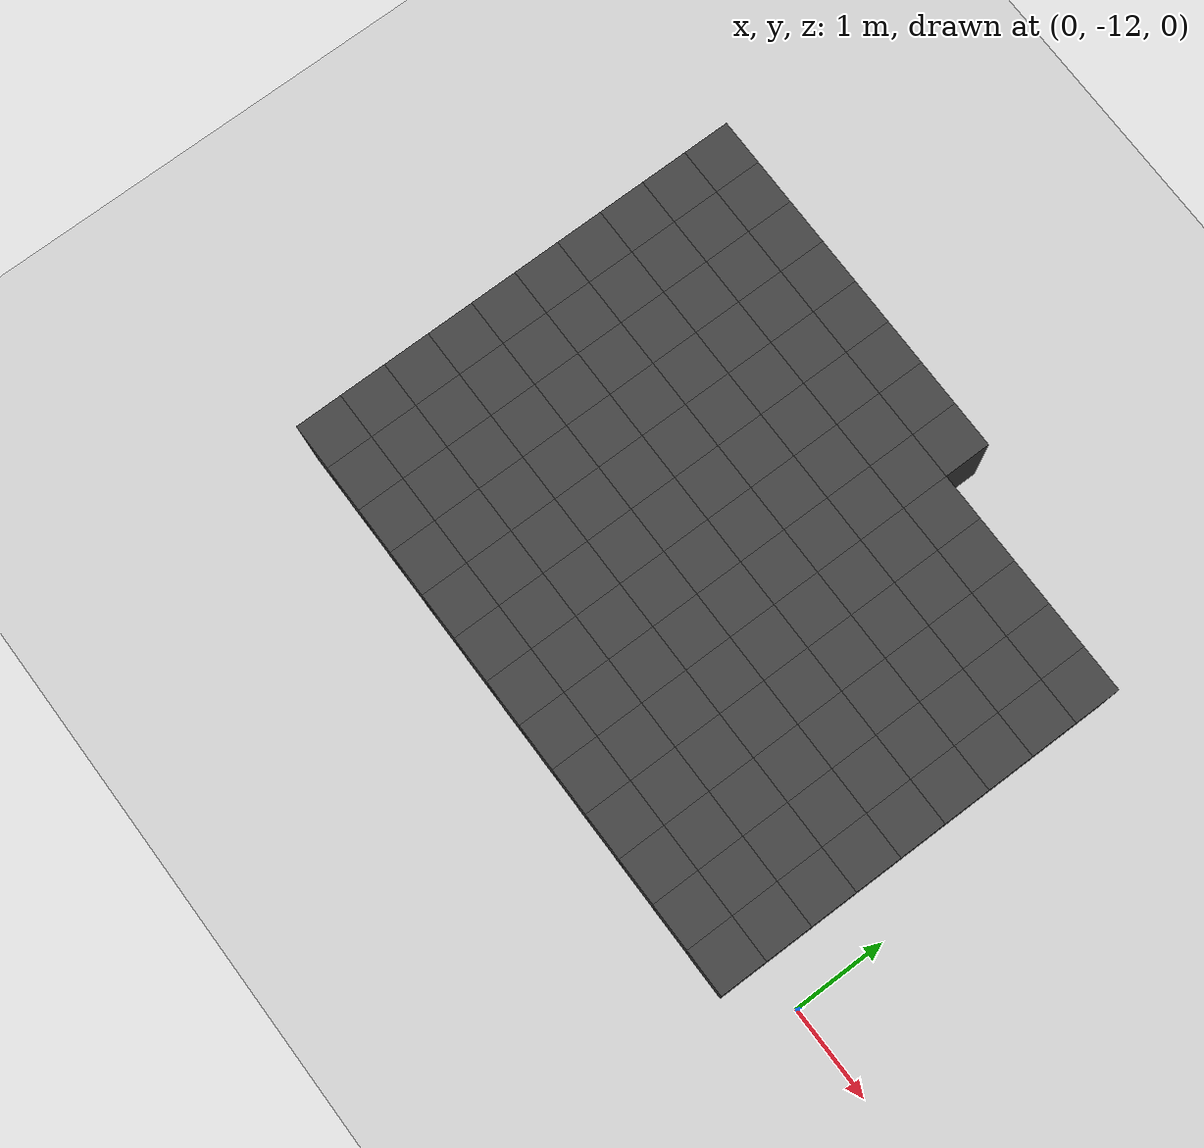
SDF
<sdf version="1.7">
 <world name="map_10764">
  <model name="ground_plane">
   <static>true</static>
   <link name="link">
    <collision name="collision">
     <geometry><plane><normal>0 0 1</normal><size>200 200</size></plane></geometry>
    </collision>
    <visual name="visual">
     <geometry><plane><normal>0 0 1</normal><size>200 200</size></plane></geometry>
     <material><ambient>0.8 0.8 0.8 1</ambient><diffuse>0.8 0.8 0.8 1</diffuse></material>
    </visual>
   </link>
  </model>
  <model name="maze_environment">
   <static>true</static>
   <link name="wall_1659">
    <pose>-6.750 -7.750 0.500 0 0 0</pose>
    <collision name="col"><geometry><box><size>0.5 0.5 1.0</size></box></geometry></collision>
    <visual name="vis">
     <geometry><box><size>0.5 0.5 1.0</size></box></geometry>
     <material><ambient>0.15 0.15 0.15 1</ambient><diffuse>0.25 0.25 0.25 1</diffuse></material>
    </visual>
   </link>
   <link name="wall_1660">
    <pose>-6.250 -7.750 0.500 0 0 0</pose>
    <collision name="col"><geometry><box><size>0.5 0.5 1.0</size></box></geometry></collision>
    <visual name="vis">
     <geometry><box><size>0.5 0.5 1.0</size></box></geometry>
     <material><ambient>0.15 0.15 0.15 1</ambient><diffuse>0.25 0.25 0.25 1</diffuse></material>
    </visual>
   </link>
   <link name="wall_1661">
    <pose>-5.750 -7.750 0.500 0 0 0</pose>
    <collision name="col"><geometry><box><size>0.5 0.5 1.0</size></box></geometry></collision>
    <visual name="vis">
     <geometry><box><size>0.5 0.5 1.0</size></box></geometry>
     <material><ambient>0.15 0.15 0.15 1</ambient><diffuse>0.25 0.25 0.25 1</diffuse></material>
    </visual>
   </link>
   <link name="wall_1662">
    <pose>-5.250 -7.750 0.500 0 0 0</pose>
    <collision name="col"><geometry><box><size>0.5 0.5 1.0</size></box></geometry></collision>
    <visual name="vis">
     <geometry><box><size>0.5 0.5 1.0</size></box></geometry>
     <material><ambient>0.15 0.15 0.15 1</ambient><diffuse>0.25 0.25 0.25 1</diffuse></material>
    </visual>
   </link>
   <link name="wall_1663">
    <pose>-4.750 -7.750 0.500 0 0 0</pose>
    <collision name="col"><geometry><box><size>0.5 0.5 1.0</size></box></geometry></collision>
    <visual name="vis">
     <geometry><box><size>0.5 0.5 1.0</size></box></geometry>
     <material><ambient>0.15 0.15 0.15 1</ambient><diffuse>0.25 0.25 0.25 1</diffuse></material>
    </visual>
   </link>
   <link name="wall_1664">
    <pose>-4.250 -7.750 0.500 0 0 0</pose>
    <collision name="col"><geometry><box><size>0.5 0.5 1.0</size></box></geometry></collision>
    <visual name="vis">
     <geometry><box><size>0.5 0.5 1.0</size></box></geometry>
     <material><ambient>0.15 0.15 0.15 1</ambient><diffuse>0.25 0.25 0.25 1</diffuse></material>
    </visual>
   </link>
   <link name="wall_1665">
    <pose>-3.750 -7.750 0.500 0 0 0</pose>
    <collision name="col"><geometry><box><size>0.5 0.5 1.0</size></box></geometry></collision>
    <visual name="vis">
     <geometry><box><size>0.5 0.5 1.0</size></box></geometry>
     <material><ambient>0.15 0.15 0.15 1</ambient><diffuse>0.25 0.25 0.25 1</diffuse></material>
    </visual>
   </link>
   <link name="wall_1666">
    <pose>-3.250 -7.750 0.500 0 0 0</pose>
    <collision name="col"><geometry><box><size>0.5 0.5 1.0</size></box></geometry></collision>
    <visual name="vis">
     <geometry><box><size>0.5 0.5 1.0</size></box></geometry>
     <material><ambient>0.15 0.15 0.15 1</ambient><diffuse>0.25 0.25 0.25 1</diffuse></material>
    </visual>
   </link>
   <link name="wall_1708">
    <pose>-6.750 -8.250 0.500 0 0 0</pose>
    <collision name="col"><geometry><box><size>0.5 0.5 1.0</size></box></geometry></collision>
    <visual name="vis">
     <geometry><box><size>0.5 0.5 1.0</size></box></geometry>
     <material><ambient>0.15 0.15 0.15 1</ambient><diffuse>0.25 0.25 0.25 1</diffuse></material>
    </visual>
   </link>
   <link name="wall_1709">
    <pose>-6.250 -8.250 0.500 0 0 0</pose>
    <collision name="col"><geometry><box><size>0.5 0.5 1.0</size></box></geometry></collision>
    <visual name="vis">
     <geometry><box><size>0.5 0.5 1.0</size></box></geometry>
     <material><ambient>0.15 0.15 0.15 1</ambient><diffuse>0.25 0.25 0.25 1</diffuse></material>
    </visual>
   </link>
   <link name="wall_1710">
    <pose>-5.750 -8.250 0.500 0 0 0</pose>
    <collision name="col"><geometry><box><size>0.5 0.5 1.0</size></box></geometry></collision>
    <visual name="vis">
     <geometry><box><size>0.5 0.5 1.0</size></box></geometry>
     <material><ambient>0.15 0.15 0.15 1</ambient><diffuse>0.25 0.25 0.25 1</diffuse></material>
    </visual>
   </link>
   <link name="wall_1711">
    <pose>-5.250 -8.250 0.500 0 0 0</pose>
    <collision name="col"><geometry><box><size>0.5 0.5 1.0</size></box></geometry></collision>
    <visual name="vis">
     <geometry><box><size>0.5 0.5 1.0</size></box></geometry>
     <material><ambient>0.15 0.15 0.15 1</ambient><diffuse>0.25 0.25 0.25 1</diffuse></material>
    </visual>
   </link>
   <link name="wall_1712">
    <pose>-4.750 -8.250 0.500 0 0 0</pose>
    <collision name="col"><geometry><box><size>0.5 0.5 1.0</size></box></geometry></collision>
    <visual name="vis">
     <geometry><box><size>0.5 0.5 1.0</size></box></geometry>
     <material><ambient>0.15 0.15 0.15 1</ambient><diffuse>0.25 0.25 0.25 1</diffuse></material>
    </visual>
   </link>
   <link name="wall_1713">
    <pose>-4.250 -8.250 0.500 0 0 0</pose>
    <collision name="col"><geometry><box><size>0.5 0.5 1.0</size></box></geometry></collision>
    <visual name="vis">
     <geometry><box><size>0.5 0.5 1.0</size></box></geometry>
     <material><ambient>0.15 0.15 0.15 1</ambient><diffuse>0.25 0.25 0.25 1</diffuse></material>
    </visual>
   </link>
   <link name="wall_1714">
    <pose>-3.750 -8.250 0.500 0 0 0</pose>
    <collision name="col"><geometry><box><size>0.5 0.5 1.0</size></box></geometry></collision>
    <visual name="vis">
     <geometry><box><size>0.5 0.5 1.0</size></box></geometry>
     <material><ambient>0.15 0.15 0.15 1</ambient><diffuse>0.25 0.25 0.25 1</diffuse></material>
    </visual>
   </link>
   <link name="wall_1715">
    <pose>-3.250 -8.250 0.500 0 0 0</pose>
    <collision name="col"><geometry><box><size>0.5 0.5 1.0</size></box></geometry></collision>
    <visual name="vis">
     <geometry><box><size>0.5 0.5 1.0</size></box></geometry>
     <material><ambient>0.15 0.15 0.15 1</ambient><diffuse>0.25 0.25 0.25 1</diffuse></material>
    </visual>
   </link>
   <link name="wall_1716">
    <pose>-2.750 -8.250 0.500 0 0 0</pose>
    <collision name="col"><geometry><box><size>0.5 0.5 1.0</size></box></geometry></collision>
    <visual name="vis">
     <geometry><box><size>0.5 0.5 1.0</size></box></geometry>
     <material><ambient>0.15 0.15 0.15 1</ambient><diffuse>0.25 0.25 0.25 1</diffuse></material>
    </visual>
   </link>
   <link name="wall_1717">
    <pose>-2.250 -8.250 0.500 0 0 0</pose>
    <collision name="col"><geometry><box><size>0.5 0.5 1.0</size></box></geometry></collision>
    <visual name="vis">
     <geometry><box><size>0.5 0.5 1.0</size></box></geometry>
     <material><ambient>0.15 0.15 0.15 1</ambient><diffuse>0.25 0.25 0.25 1</diffuse></material>
    </visual>
   </link>
   <link name="wall_1718">
    <pose>-1.750 -8.250 0.500 0 0 0</pose>
    <collision name="col"><geometry><box><size>0.5 0.5 1.0</size></box></geometry></collision>
    <visual name="vis">
     <geometry><box><size>0.5 0.5 1.0</size></box></geometry>
     <material><ambient>0.15 0.15 0.15 1</ambient><diffuse>0.25 0.25 0.25 1</diffuse></material>
    </visual>
   </link>
   <link name="wall_1719">
    <pose>-1.250 -8.250 0.500 0 0 0</pose>
    <collision name="col"><geometry><box><size>0.5 0.5 1.0</size></box></geometry></collision>
    <visual name="vis">
     <geometry><box><size>0.5 0.5 1.0</size></box></geometry>
     <material><ambient>0.15 0.15 0.15 1</ambient><diffuse>0.25 0.25 0.25 1</diffuse></material>
    </visual>
   </link>
   <link name="wall_1720">
    <pose>-0.750 -8.250 0.500 0 0 0</pose>
    <collision name="col"><geometry><box><size>0.5 0.5 1.0</size></box></geometry></collision>
    <visual name="vis">
     <geometry><box><size>0.5 0.5 1.0</size></box></geometry>
     <material><ambient>0.15 0.15 0.15 1</ambient><diffuse>0.25 0.25 0.25 1</diffuse></material>
    </visual>
   </link>
   <link name="wall_1757">
    <pose>-6.750 -8.750 0.500 0 0 0</pose>
    <collision name="col"><geometry><box><size>0.5 0.5 1.0</size></box></geometry></collision>
    <visual name="vis">
     <geometry><box><size>0.5 0.5 1.0</size></box></geometry>
     <material><ambient>0.15 0.15 0.15 1</ambient><diffuse>0.25 0.25 0.25 1</diffuse></material>
    </visual>
   </link>
   <link name="wall_1758">
    <pose>-6.250 -8.750 0.500 0 0 0</pose>
    <collision name="col"><geometry><box><size>0.5 0.5 1.0</size></box></geometry></collision>
    <visual name="vis">
     <geometry><box><size>0.5 0.5 1.0</size></box></geometry>
     <material><ambient>0.15 0.15 0.15 1</ambient><diffuse>0.25 0.25 0.25 1</diffuse></material>
    </visual>
   </link>
   <link name="wall_1759">
    <pose>-5.750 -8.750 0.500 0 0 0</pose>
    <collision name="col"><geometry><box><size>0.5 0.5 1.0</size></box></geometry></collision>
    <visual name="vis">
     <geometry><box><size>0.5 0.5 1.0</size></box></geometry>
     <material><ambient>0.15 0.15 0.15 1</ambient><diffuse>0.25 0.25 0.25 1</diffuse></material>
    </visual>
   </link>
   <link name="wall_1760">
    <pose>-5.250 -8.750 0.500 0 0 0</pose>
    <collision name="col"><geometry><box><size>0.5 0.5 1.0</size></box></geometry></collision>
    <visual name="vis">
     <geometry><box><size>0.5 0.5 1.0</size></box></geometry>
     <material><ambient>0.15 0.15 0.15 1</ambient><diffuse>0.25 0.25 0.25 1</diffuse></material>
    </visual>
   </link>
   <link name="wall_1761">
    <pose>-4.750 -8.750 0.500 0 0 0</pose>
    <collision name="col"><geometry><box><size>0.5 0.5 1.0</size></box></geometry></collision>
    <visual name="vis">
     <geometry><box><size>0.5 0.5 1.0</size></box></geometry>
     <material><ambient>0.15 0.15 0.15 1</ambient><diffuse>0.25 0.25 0.25 1</diffuse></material>
    </visual>
   </link>
   <link name="wall_1762">
    <pose>-4.250 -8.750 0.500 0 0 0</pose>
    <collision name="col"><geometry><box><size>0.5 0.5 1.0</size></box></geometry></collision>
    <visual name="vis">
     <geometry><box><size>0.5 0.5 1.0</size></box></geometry>
     <material><ambient>0.15 0.15 0.15 1</ambient><diffuse>0.25 0.25 0.25 1</diffuse></material>
    </visual>
   </link>
   <link name="wall_1763">
    <pose>-3.750 -8.750 0.500 0 0 0</pose>
    <collision name="col"><geometry><box><size>0.5 0.5 1.0</size></box></geometry></collision>
    <visual name="vis">
     <geometry><box><size>0.5 0.5 1.0</size></box></geometry>
     <material><ambient>0.15 0.15 0.15 1</ambient><diffuse>0.25 0.25 0.25 1</diffuse></material>
    </visual>
   </link>
   <link name="wall_1764">
    <pose>-3.250 -8.750 0.500 0 0 0</pose>
    <collision name="col"><geometry><box><size>0.5 0.5 1.0</size></box></geometry></collision>
    <visual name="vis">
     <geometry><box><size>0.5 0.5 1.0</size></box></geometry>
     <material><ambient>0.15 0.15 0.15 1</ambient><diffuse>0.25 0.25 0.25 1</diffuse></material>
    </visual>
   </link>
   <link name="wall_1765">
    <pose>-2.750 -8.750 0.500 0 0 0</pose>
    <collision name="col"><geometry><box><size>0.5 0.5 1.0</size></box></geometry></collision>
    <visual name="vis">
     <geometry><box><size>0.5 0.5 1.0</size></box></geometry>
     <material><ambient>0.15 0.15 0.15 1</ambient><diffuse>0.25 0.25 0.25 1</diffuse></material>
    </visual>
   </link>
   <link name="wall_1766">
    <pose>-2.250 -8.750 0.500 0 0 0</pose>
    <collision name="col"><geometry><box><size>0.5 0.5 1.0</size></box></geometry></collision>
    <visual name="vis">
     <geometry><box><size>0.5 0.5 1.0</size></box></geometry>
     <material><ambient>0.15 0.15 0.15 1</ambient><diffuse>0.25 0.25 0.25 1</diffuse></material>
    </visual>
   </link>
   <link name="wall_1767">
    <pose>-1.750 -8.750 0.500 0 0 0</pose>
    <collision name="col"><geometry><box><size>0.5 0.5 1.0</size></box></geometry></collision>
    <visual name="vis">
     <geometry><box><size>0.5 0.5 1.0</size></box></geometry>
     <material><ambient>0.15 0.15 0.15 1</ambient><diffuse>0.25 0.25 0.25 1</diffuse></material>
    </visual>
   </link>
   <link name="wall_1768">
    <pose>-1.250 -8.750 0.500 0 0 0</pose>
    <collision name="col"><geometry><box><size>0.5 0.5 1.0</size></box></geometry></collision>
    <visual name="vis">
     <geometry><box><size>0.5 0.5 1.0</size></box></geometry>
     <material><ambient>0.15 0.15 0.15 1</ambient><diffuse>0.25 0.25 0.25 1</diffuse></material>
    </visual>
   </link>
   <link name="wall_1769">
    <pose>-0.750 -8.750 0.500 0 0 0</pose>
    <collision name="col"><geometry><box><size>0.5 0.5 1.0</size></box></geometry></collision>
    <visual name="vis">
     <geometry><box><size>0.5 0.5 1.0</size></box></geometry>
     <material><ambient>0.15 0.15 0.15 1</ambient><diffuse>0.25 0.25 0.25 1</diffuse></material>
    </visual>
   </link>
   <link name="wall_1806">
    <pose>-6.750 -9.250 0.500 0 0 0</pose>
    <collision name="col"><geometry><box><size>0.5 0.5 1.0</size></box></geometry></collision>
    <visual name="vis">
     <geometry><box><size>0.5 0.5 1.0</size></box></geometry>
     <material><ambient>0.15 0.15 0.15 1</ambient><diffuse>0.25 0.25 0.25 1</diffuse></material>
    </visual>
   </link>
   <link name="wall_1807">
    <pose>-6.250 -9.250 0.500 0 0 0</pose>
    <collision name="col"><geometry><box><size>0.5 0.5 1.0</size></box></geometry></collision>
    <visual name="vis">
     <geometry><box><size>0.5 0.5 1.0</size></box></geometry>
     <material><ambient>0.15 0.15 0.15 1</ambient><diffuse>0.25 0.25 0.25 1</diffuse></material>
    </visual>
   </link>
   <link name="wall_1808">
    <pose>-5.750 -9.250 0.500 0 0 0</pose>
    <collision name="col"><geometry><box><size>0.5 0.5 1.0</size></box></geometry></collision>
    <visual name="vis">
     <geometry><box><size>0.5 0.5 1.0</size></box></geometry>
     <material><ambient>0.15 0.15 0.15 1</ambient><diffuse>0.25 0.25 0.25 1</diffuse></material>
    </visual>
   </link>
   <link name="wall_1809">
    <pose>-5.250 -9.250 0.500 0 0 0</pose>
    <collision name="col"><geometry><box><size>0.5 0.5 1.0</size></box></geometry></collision>
    <visual name="vis">
     <geometry><box><size>0.5 0.5 1.0</size></box></geometry>
     <material><ambient>0.15 0.15 0.15 1</ambient><diffuse>0.25 0.25 0.25 1</diffuse></material>
    </visual>
   </link>
   <link name="wall_1810">
    <pose>-4.750 -9.250 0.500 0 0 0</pose>
    <collision name="col"><geometry><box><size>0.5 0.5 1.0</size></box></geometry></collision>
    <visual name="vis">
     <geometry><box><size>0.5 0.5 1.0</size></box></geometry>
     <material><ambient>0.15 0.15 0.15 1</ambient><diffuse>0.25 0.25 0.25 1</diffuse></material>
    </visual>
   </link>
   <link name="wall_1811">
    <pose>-4.250 -9.250 0.500 0 0 0</pose>
    <collision name="col"><geometry><box><size>0.5 0.5 1.0</size></box></geometry></collision>
    <visual name="vis">
     <geometry><box><size>0.5 0.5 1.0</size></box></geometry>
     <material><ambient>0.15 0.15 0.15 1</ambient><diffuse>0.25 0.25 0.25 1</diffuse></material>
    </visual>
   </link>
   <link name="wall_1812">
    <pose>-3.750 -9.250 0.500 0 0 0</pose>
    <collision name="col"><geometry><box><size>0.5 0.5 1.0</size></box></geometry></collision>
    <visual name="vis">
     <geometry><box><size>0.5 0.5 1.0</size></box></geometry>
     <material><ambient>0.15 0.15 0.15 1</ambient><diffuse>0.25 0.25 0.25 1</diffuse></material>
    </visual>
   </link>
   <link name="wall_1813">
    <pose>-3.250 -9.250 0.500 0 0 0</pose>
    <collision name="col"><geometry><box><size>0.5 0.5 1.0</size></box></geometry></collision>
    <visual name="vis">
     <geometry><box><size>0.5 0.5 1.0</size></box></geometry>
     <material><ambient>0.15 0.15 0.15 1</ambient><diffuse>0.25 0.25 0.25 1</diffuse></material>
    </visual>
   </link>
   <link name="wall_1814">
    <pose>-2.750 -9.250 0.500 0 0 0</pose>
    <collision name="col"><geometry><box><size>0.5 0.5 1.0</size></box></geometry></collision>
    <visual name="vis">
     <geometry><box><size>0.5 0.5 1.0</size></box></geometry>
     <material><ambient>0.15 0.15 0.15 1</ambient><diffuse>0.25 0.25 0.25 1</diffuse></material>
    </visual>
   </link>
   <link name="wall_1815">
    <pose>-2.250 -9.250 0.500 0 0 0</pose>
    <collision name="col"><geometry><box><size>0.5 0.5 1.0</size></box></geometry></collision>
    <visual name="vis">
     <geometry><box><size>0.5 0.5 1.0</size></box></geometry>
     <material><ambient>0.15 0.15 0.15 1</ambient><diffuse>0.25 0.25 0.25 1</diffuse></material>
    </visual>
   </link>
   <link name="wall_1816">
    <pose>-1.750 -9.250 0.500 0 0 0</pose>
    <collision name="col"><geometry><box><size>0.5 0.5 1.0</size></box></geometry></collision>
    <visual name="vis">
     <geometry><box><size>0.5 0.5 1.0</size></box></geometry>
     <material><ambient>0.15 0.15 0.15 1</ambient><diffuse>0.25 0.25 0.25 1</diffuse></material>
    </visual>
   </link>
   <link name="wall_1817">
    <pose>-1.250 -9.250 0.500 0 0 0</pose>
    <collision name="col"><geometry><box><size>0.5 0.5 1.0</size></box></geometry></collision>
    <visual name="vis">
     <geometry><box><size>0.5 0.5 1.0</size></box></geometry>
     <material><ambient>0.15 0.15 0.15 1</ambient><diffuse>0.25 0.25 0.25 1</diffuse></material>
    </visual>
   </link>
   <link name="wall_1818">
    <pose>-0.750 -9.250 0.500 0 0 0</pose>
    <collision name="col"><geometry><box><size>0.5 0.5 1.0</size></box></geometry></collision>
    <visual name="vis">
     <geometry><box><size>0.5 0.5 1.0</size></box></geometry>
     <material><ambient>0.15 0.15 0.15 1</ambient><diffuse>0.25 0.25 0.25 1</diffuse></material>
    </visual>
   </link>
   <link name="wall_1855">
    <pose>-6.750 -9.750 0.500 0 0 0</pose>
    <collision name="col"><geometry><box><size>0.5 0.5 1.0</size></box></geometry></collision>
    <visual name="vis">
     <geometry><box><size>0.5 0.5 1.0</size></box></geometry>
     <material><ambient>0.15 0.15 0.15 1</ambient><diffuse>0.25 0.25 0.25 1</diffuse></material>
    </visual>
   </link>
   <link name="wall_1856">
    <pose>-6.250 -9.750 0.500 0 0 0</pose>
    <collision name="col"><geometry><box><size>0.5 0.5 1.0</size></box></geometry></collision>
    <visual name="vis">
     <geometry><box><size>0.5 0.5 1.0</size></box></geometry>
     <material><ambient>0.15 0.15 0.15 1</ambient><diffuse>0.25 0.25 0.25 1</diffuse></material>
    </visual>
   </link>
   <link name="wall_1857">
    <pose>-5.750 -9.750 0.500 0 0 0</pose>
    <collision name="col"><geometry><box><size>0.5 0.5 1.0</size></box></geometry></collision>
    <visual name="vis">
     <geometry><box><size>0.5 0.5 1.0</size></box></geometry>
     <material><ambient>0.15 0.15 0.15 1</ambient><diffuse>0.25 0.25 0.25 1</diffuse></material>
    </visual>
   </link>
   <link name="wall_1858">
    <pose>-5.250 -9.750 0.500 0 0 0</pose>
    <collision name="col"><geometry><box><size>0.5 0.5 1.0</size></box></geometry></collision>
    <visual name="vis">
     <geometry><box><size>0.5 0.5 1.0</size></box></geometry>
     <material><ambient>0.15 0.15 0.15 1</ambient><diffuse>0.25 0.25 0.25 1</diffuse></material>
    </visual>
   </link>
   <link name="wall_1859">
    <pose>-4.750 -9.750 0.500 0 0 0</pose>
    <collision name="col"><geometry><box><size>0.5 0.5 1.0</size></box></geometry></collision>
    <visual name="vis">
     <geometry><box><size>0.5 0.5 1.0</size></box></geometry>
     <material><ambient>0.15 0.15 0.15 1</ambient><diffuse>0.25 0.25 0.25 1</diffuse></material>
    </visual>
   </link>
   <link name="wall_1860">
    <pose>-4.250 -9.750 0.500 0 0 0</pose>
    <collision name="col"><geometry><box><size>0.5 0.5 1.0</size></box></geometry></collision>
    <visual name="vis">
     <geometry><box><size>0.5 0.5 1.0</size></box></geometry>
     <material><ambient>0.15 0.15 0.15 1</ambient><diffuse>0.25 0.25 0.25 1</diffuse></material>
    </visual>
   </link>
   <link name="wall_1861">
    <pose>-3.750 -9.750 0.500 0 0 0</pose>
    <collision name="col"><geometry><box><size>0.5 0.5 1.0</size></box></geometry></collision>
    <visual name="vis">
     <geometry><box><size>0.5 0.5 1.0</size></box></geometry>
     <material><ambient>0.15 0.15 0.15 1</ambient><diffuse>0.25 0.25 0.25 1</diffuse></material>
    </visual>
   </link>
   <link name="wall_1862">
    <pose>-3.250 -9.750 0.500 0 0 0</pose>
    <collision name="col"><geometry><box><size>0.5 0.5 1.0</size></box></geometry></collision>
    <visual name="vis">
     <geometry><box><size>0.5 0.5 1.0</size></box></geometry>
     <material><ambient>0.15 0.15 0.15 1</ambient><diffuse>0.25 0.25 0.25 1</diffuse></material>
    </visual>
   </link>
   <link name="wall_1863">
    <pose>-2.750 -9.750 0.500 0 0 0</pose>
    <collision name="col"><geometry><box><size>0.5 0.5 1.0</size></box></geometry></collision>
    <visual name="vis">
     <geometry><box><size>0.5 0.5 1.0</size></box></geometry>
     <material><ambient>0.15 0.15 0.15 1</ambient><diffuse>0.25 0.25 0.25 1</diffuse></material>
    </visual>
   </link>
   <link name="wall_1864">
    <pose>-2.250 -9.750 0.500 0 0 0</pose>
    <collision name="col"><geometry><box><size>0.5 0.5 1.0</size></box></geometry></collision>
    <visual name="vis">
     <geometry><box><size>0.5 0.5 1.0</size></box></geometry>
     <material><ambient>0.15 0.15 0.15 1</ambient><diffuse>0.25 0.25 0.25 1</diffuse></material>
    </visual>
   </link>
   <link name="wall_1865">
    <pose>-1.750 -9.750 0.500 0 0 0</pose>
    <collision name="col"><geometry><box><size>0.5 0.5 1.0</size></box></geometry></collision>
    <visual name="vis">
     <geometry><box><size>0.5 0.5 1.0</size></box></geometry>
     <material><ambient>0.15 0.15 0.15 1</ambient><diffuse>0.25 0.25 0.25 1</diffuse></material>
    </visual>
   </link>
   <link name="wall_1866">
    <pose>-1.250 -9.750 0.500 0 0 0</pose>
    <collision name="col"><geometry><box><size>0.5 0.5 1.0</size></box></geometry></collision>
    <visual name="vis">
     <geometry><box><size>0.5 0.5 1.0</size></box></geometry>
     <material><ambient>0.15 0.15 0.15 1</ambient><diffuse>0.25 0.25 0.25 1</diffuse></material>
    </visual>
   </link>
   <link name="wall_1867">
    <pose>-0.750 -9.750 0.500 0 0 0</pose>
    <collision name="col"><geometry><box><size>0.5 0.5 1.0</size></box></geometry></collision>
    <visual name="vis">
     <geometry><box><size>0.5 0.5 1.0</size></box></geometry>
     <material><ambient>0.15 0.15 0.15 1</ambient><diffuse>0.25 0.25 0.25 1</diffuse></material>
    </visual>
   </link>
   <link name="wall_1904">
    <pose>-6.750 -10.250 0.500 0 0 0</pose>
    <collision name="col"><geometry><box><size>0.5 0.5 1.0</size></box></geometry></collision>
    <visual name="vis">
     <geometry><box><size>0.5 0.5 1.0</size></box></geometry>
     <material><ambient>0.15 0.15 0.15 1</ambient><diffuse>0.25 0.25 0.25 1</diffuse></material>
    </visual>
   </link>
   <link name="wall_1905">
    <pose>-6.250 -10.250 0.500 0 0 0</pose>
    <collision name="col"><geometry><box><size>0.5 0.5 1.0</size></box></geometry></collision>
    <visual name="vis">
     <geometry><box><size>0.5 0.5 1.0</size></box></geometry>
     <material><ambient>0.15 0.15 0.15 1</ambient><diffuse>0.25 0.25 0.25 1</diffuse></material>
    </visual>
   </link>
   <link name="wall_1906">
    <pose>-5.750 -10.250 0.500 0 0 0</pose>
    <collision name="col"><geometry><box><size>0.5 0.5 1.0</size></box></geometry></collision>
    <visual name="vis">
     <geometry><box><size>0.5 0.5 1.0</size></box></geometry>
     <material><ambient>0.15 0.15 0.15 1</ambient><diffuse>0.25 0.25 0.25 1</diffuse></material>
    </visual>
   </link>
   <link name="wall_1907">
    <pose>-5.250 -10.250 0.500 0 0 0</pose>
    <collision name="col"><geometry><box><size>0.5 0.5 1.0</size></box></geometry></collision>
    <visual name="vis">
     <geometry><box><size>0.5 0.5 1.0</size></box></geometry>
     <material><ambient>0.15 0.15 0.15 1</ambient><diffuse>0.25 0.25 0.25 1</diffuse></material>
    </visual>
   </link>
   <link name="wall_1908">
    <pose>-4.750 -10.250 0.500 0 0 0</pose>
    <collision name="col"><geometry><box><size>0.5 0.5 1.0</size></box></geometry></collision>
    <visual name="vis">
     <geometry><box><size>0.5 0.5 1.0</size></box></geometry>
     <material><ambient>0.15 0.15 0.15 1</ambient><diffuse>0.25 0.25 0.25 1</diffuse></material>
    </visual>
   </link>
   <link name="wall_1909">
    <pose>-4.250 -10.250 0.500 0 0 0</pose>
    <collision name="col"><geometry><box><size>0.5 0.5 1.0</size></box></geometry></collision>
    <visual name="vis">
     <geometry><box><size>0.5 0.5 1.0</size></box></geometry>
     <material><ambient>0.15 0.15 0.15 1</ambient><diffuse>0.25 0.25 0.25 1</diffuse></material>
    </visual>
   </link>
   <link name="wall_1910">
    <pose>-3.750 -10.250 0.500 0 0 0</pose>
    <collision name="col"><geometry><box><size>0.5 0.5 1.0</size></box></geometry></collision>
    <visual name="vis">
     <geometry><box><size>0.5 0.5 1.0</size></box></geometry>
     <material><ambient>0.15 0.15 0.15 1</ambient><diffuse>0.25 0.25 0.25 1</diffuse></material>
    </visual>
   </link>
   <link name="wall_1911">
    <pose>-3.250 -10.250 0.500 0 0 0</pose>
    <collision name="col"><geometry><box><size>0.5 0.5 1.0</size></box></geometry></collision>
    <visual name="vis">
     <geometry><box><size>0.5 0.5 1.0</size></box></geometry>
     <material><ambient>0.15 0.15 0.15 1</ambient><diffuse>0.25 0.25 0.25 1</diffuse></material>
    </visual>
   </link>
   <link name="wall_1912">
    <pose>-2.750 -10.250 0.500 0 0 0</pose>
    <collision name="col"><geometry><box><size>0.5 0.5 1.0</size></box></geometry></collision>
    <visual name="vis">
     <geometry><box><size>0.5 0.5 1.0</size></box></geometry>
     <material><ambient>0.15 0.15 0.15 1</ambient><diffuse>0.25 0.25 0.25 1</diffuse></material>
    </visual>
   </link>
   <link name="wall_1913">
    <pose>-2.250 -10.250 0.500 0 0 0</pose>
    <collision name="col"><geometry><box><size>0.5 0.5 1.0</size></box></geometry></collision>
    <visual name="vis">
     <geometry><box><size>0.5 0.5 1.0</size></box></geometry>
     <material><ambient>0.15 0.15 0.15 1</ambient><diffuse>0.25 0.25 0.25 1</diffuse></material>
    </visual>
   </link>
   <link name="wall_1914">
    <pose>-1.750 -10.250 0.500 0 0 0</pose>
    <collision name="col"><geometry><box><size>0.5 0.5 1.0</size></box></geometry></collision>
    <visual name="vis">
     <geometry><box><size>0.5 0.5 1.0</size></box></geometry>
     <material><ambient>0.15 0.15 0.15 1</ambient><diffuse>0.25 0.25 0.25 1</diffuse></material>
    </visual>
   </link>
   <link name="wall_1915">
    <pose>-1.250 -10.250 0.500 0 0 0</pose>
    <collision name="col"><geometry><box><size>0.5 0.5 1.0</size></box></geometry></collision>
    <visual name="vis">
     <geometry><box><size>0.5 0.5 1.0</size></box></geometry>
     <material><ambient>0.15 0.15 0.15 1</ambient><diffuse>0.25 0.25 0.25 1</diffuse></material>
    </visual>
   </link>
   <link name="wall_1916">
    <pose>-0.750 -10.250 0.500 0 0 0</pose>
    <collision name="col"><geometry><box><size>0.5 0.5 1.0</size></box></geometry></collision>
    <visual name="vis">
     <geometry><box><size>0.5 0.5 1.0</size></box></geometry>
     <material><ambient>0.15 0.15 0.15 1</ambient><diffuse>0.25 0.25 0.25 1</diffuse></material>
    </visual>
   </link>
   <link name="wall_1953">
    <pose>-6.750 -10.750 0.500 0 0 0</pose>
    <collision name="col"><geometry><box><size>0.5 0.5 1.0</size></box></geometry></collision>
    <visual name="vis">
     <geometry><box><size>0.5 0.5 1.0</size></box></geometry>
     <material><ambient>0.15 0.15 0.15 1</ambient><diffuse>0.25 0.25 0.25 1</diffuse></material>
    </visual>
   </link>
   <link name="wall_1954">
    <pose>-6.250 -10.750 0.500 0 0 0</pose>
    <collision name="col"><geometry><box><size>0.5 0.5 1.0</size></box></geometry></collision>
    <visual name="vis">
     <geometry><box><size>0.5 0.5 1.0</size></box></geometry>
     <material><ambient>0.15 0.15 0.15 1</ambient><diffuse>0.25 0.25 0.25 1</diffuse></material>
    </visual>
   </link>
   <link name="wall_1955">
    <pose>-5.750 -10.750 0.500 0 0 0</pose>
    <collision name="col"><geometry><box><size>0.5 0.5 1.0</size></box></geometry></collision>
    <visual name="vis">
     <geometry><box><size>0.5 0.5 1.0</size></box></geometry>
     <material><ambient>0.15 0.15 0.15 1</ambient><diffuse>0.25 0.25 0.25 1</diffuse></material>
    </visual>
   </link>
   <link name="wall_1956">
    <pose>-5.250 -10.750 0.500 0 0 0</pose>
    <collision name="col"><geometry><box><size>0.5 0.5 1.0</size></box></geometry></collision>
    <visual name="vis">
     <geometry><box><size>0.5 0.5 1.0</size></box></geometry>
     <material><ambient>0.15 0.15 0.15 1</ambient><diffuse>0.25 0.25 0.25 1</diffuse></material>
    </visual>
   </link>
   <link name="wall_1957">
    <pose>-4.750 -10.750 0.500 0 0 0</pose>
    <collision name="col"><geometry><box><size>0.5 0.5 1.0</size></box></geometry></collision>
    <visual name="vis">
     <geometry><box><size>0.5 0.5 1.0</size></box></geometry>
     <material><ambient>0.15 0.15 0.15 1</ambient><diffuse>0.25 0.25 0.25 1</diffuse></material>
    </visual>
   </link>
   <link name="wall_1958">
    <pose>-4.250 -10.750 0.500 0 0 0</pose>
    <collision name="col"><geometry><box><size>0.5 0.5 1.0</size></box></geometry></collision>
    <visual name="vis">
     <geometry><box><size>0.5 0.5 1.0</size></box></geometry>
     <material><ambient>0.15 0.15 0.15 1</ambient><diffuse>0.25 0.25 0.25 1</diffuse></material>
    </visual>
   </link>
   <link name="wall_1959">
    <pose>-3.750 -10.750 0.500 0 0 0</pose>
    <collision name="col"><geometry><box><size>0.5 0.5 1.0</size></box></geometry></collision>
    <visual name="vis">
     <geometry><box><size>0.5 0.5 1.0</size></box></geometry>
     <material><ambient>0.15 0.15 0.15 1</ambient><diffuse>0.25 0.25 0.25 1</diffuse></material>
    </visual>
   </link>
   <link name="wall_1960">
    <pose>-3.250 -10.750 0.500 0 0 0</pose>
    <collision name="col"><geometry><box><size>0.5 0.5 1.0</size></box></geometry></collision>
    <visual name="vis">
     <geometry><box><size>0.5 0.5 1.0</size></box></geometry>
     <material><ambient>0.15 0.15 0.15 1</ambient><diffuse>0.25 0.25 0.25 1</diffuse></material>
    </visual>
   </link>
   <link name="wall_1961">
    <pose>-2.750 -10.750 0.500 0 0 0</pose>
    <collision name="col"><geometry><box><size>0.5 0.5 1.0</size></box></geometry></collision>
    <visual name="vis">
     <geometry><box><size>0.5 0.5 1.0</size></box></geometry>
     <material><ambient>0.15 0.15 0.15 1</ambient><diffuse>0.25 0.25 0.25 1</diffuse></material>
    </visual>
   </link>
   <link name="wall_1962">
    <pose>-2.250 -10.750 0.500 0 0 0</pose>
    <collision name="col"><geometry><box><size>0.5 0.5 1.0</size></box></geometry></collision>
    <visual name="vis">
     <geometry><box><size>0.5 0.5 1.0</size></box></geometry>
     <material><ambient>0.15 0.15 0.15 1</ambient><diffuse>0.25 0.25 0.25 1</diffuse></material>
    </visual>
   </link>
   <link name="wall_1963">
    <pose>-1.750 -10.750 0.500 0 0 0</pose>
    <collision name="col"><geometry><box><size>0.5 0.5 1.0</size></box></geometry></collision>
    <visual name="vis">
     <geometry><box><size>0.5 0.5 1.0</size></box></geometry>
     <material><ambient>0.15 0.15 0.15 1</ambient><diffuse>0.25 0.25 0.25 1</diffuse></material>
    </visual>
   </link>
   <link name="wall_1964">
    <pose>-1.250 -10.750 0.500 0 0 0</pose>
    <collision name="col"><geometry><box><size>0.5 0.5 1.0</size></box></geometry></collision>
    <visual name="vis">
     <geometry><box><size>0.5 0.5 1.0</size></box></geometry>
     <material><ambient>0.15 0.15 0.15 1</ambient><diffuse>0.25 0.25 0.25 1</diffuse></material>
    </visual>
   </link>
   <link name="wall_1965">
    <pose>-0.750 -10.750 0.500 0 0 0</pose>
    <collision name="col"><geometry><box><size>0.5 0.5 1.0</size></box></geometry></collision>
    <visual name="vis">
     <geometry><box><size>0.5 0.5 1.0</size></box></geometry>
     <material><ambient>0.15 0.15 0.15 1</ambient><diffuse>0.25 0.25 0.25 1</diffuse></material>
    </visual>
   </link>
   <link name="wall_1999">
    <pose>-6.750 -11.250 0.500 0 0 0</pose>
    <collision name="col"><geometry><box><size>0.5 0.5 1.0</size></box></geometry></collision>
    <visual name="vis">
     <geometry><box><size>0.5 0.5 1.0</size></box></geometry>
     <material><ambient>0.15 0.15 0.15 1</ambient><diffuse>0.25 0.25 0.25 1</diffuse></material>
    </visual>
   </link>
   <link name="wall_2000">
    <pose>-6.250 -11.250 0.500 0 0 0</pose>
    <collision name="col"><geometry><box><size>0.5 0.5 1.0</size></box></geometry></collision>
    <visual name="vis">
     <geometry><box><size>0.5 0.5 1.0</size></box></geometry>
     <material><ambient>0.15 0.15 0.15 1</ambient><diffuse>0.25 0.25 0.25 1</diffuse></material>
    </visual>
   </link>
   <link name="wall_2001">
    <pose>-5.750 -11.250 0.500 0 0 0</pose>
    <collision name="col"><geometry><box><size>0.5 0.5 1.0</size></box></geometry></collision>
    <visual name="vis">
     <geometry><box><size>0.5 0.5 1.0</size></box></geometry>
     <material><ambient>0.15 0.15 0.15 1</ambient><diffuse>0.25 0.25 0.25 1</diffuse></material>
    </visual>
   </link>
   <link name="wall_2002">
    <pose>-5.250 -11.250 0.500 0 0 0</pose>
    <collision name="col"><geometry><box><size>0.5 0.5 1.0</size></box></geometry></collision>
    <visual name="vis">
     <geometry><box><size>0.5 0.5 1.0</size></box></geometry>
     <material><ambient>0.15 0.15 0.15 1</ambient><diffuse>0.25 0.25 0.25 1</diffuse></material>
    </visual>
   </link>
   <link name="wall_2003">
    <pose>-4.750 -11.250 0.500 0 0 0</pose>
    <collision name="col"><geometry><box><size>0.5 0.5 1.0</size></box></geometry></collision>
    <visual name="vis">
     <geometry><box><size>0.5 0.5 1.0</size></box></geometry>
     <material><ambient>0.15 0.15 0.15 1</ambient><diffuse>0.25 0.25 0.25 1</diffuse></material>
    </visual>
   </link>
   <link name="wall_2004">
    <pose>-4.250 -11.250 0.500 0 0 0</pose>
    <collision name="col"><geometry><box><size>0.5 0.5 1.0</size></box></geometry></collision>
    <visual name="vis">
     <geometry><box><size>0.5 0.5 1.0</size></box></geometry>
     <material><ambient>0.15 0.15 0.15 1</ambient><diffuse>0.25 0.25 0.25 1</diffuse></material>
    </visual>
   </link>
   <link name="wall_2005">
    <pose>-3.750 -11.250 0.500 0 0 0</pose>
    <collision name="col"><geometry><box><size>0.5 0.5 1.0</size></box></geometry></collision>
    <visual name="vis">
     <geometry><box><size>0.5 0.5 1.0</size></box></geometry>
     <material><ambient>0.15 0.15 0.15 1</ambient><diffuse>0.25 0.25 0.25 1</diffuse></material>
    </visual>
   </link>
   <link name="wall_2006">
    <pose>-3.250 -11.250 0.500 0 0 0</pose>
    <collision name="col"><geometry><box><size>0.5 0.5 1.0</size></box></geometry></collision>
    <visual name="vis">
     <geometry><box><size>0.5 0.5 1.0</size></box></geometry>
     <material><ambient>0.15 0.15 0.15 1</ambient><diffuse>0.25 0.25 0.25 1</diffuse></material>
    </visual>
   </link>
   <link name="wall_2007">
    <pose>-2.750 -11.250 0.500 0 0 0</pose>
    <collision name="col"><geometry><box><size>0.5 0.5 1.0</size></box></geometry></collision>
    <visual name="vis">
     <geometry><box><size>0.5 0.5 1.0</size></box></geometry>
     <material><ambient>0.15 0.15 0.15 1</ambient><diffuse>0.25 0.25 0.25 1</diffuse></material>
    </visual>
   </link>
   <link name="wall_2008">
    <pose>-2.250 -11.250 0.500 0 0 0</pose>
    <collision name="col"><geometry><box><size>0.5 0.5 1.0</size></box></geometry></collision>
    <visual name="vis">
     <geometry><box><size>0.5 0.5 1.0</size></box></geometry>
     <material><ambient>0.15 0.15 0.15 1</ambient><diffuse>0.25 0.25 0.25 1</diffuse></material>
    </visual>
   </link>
   <link name="wall_2009">
    <pose>-1.750 -11.250 0.500 0 0 0</pose>
    <collision name="col"><geometry><box><size>0.5 0.5 1.0</size></box></geometry></collision>
    <visual name="vis">
     <geometry><box><size>0.5 0.5 1.0</size></box></geometry>
     <material><ambient>0.15 0.15 0.15 1</ambient><diffuse>0.25 0.25 0.25 1</diffuse></material>
    </visual>
   </link>
   <link name="wall_2010">
    <pose>-1.250 -11.250 0.500 0 0 0</pose>
    <collision name="col"><geometry><box><size>0.5 0.5 1.0</size></box></geometry></collision>
    <visual name="vis">
     <geometry><box><size>0.5 0.5 1.0</size></box></geometry>
     <material><ambient>0.15 0.15 0.15 1</ambient><diffuse>0.25 0.25 0.25 1</diffuse></material>
    </visual>
   </link>
   <link name="wall_2011">
    <pose>-0.750 -11.250 0.500 0 0 0</pose>
    <collision name="col"><geometry><box><size>0.5 0.5 1.0</size></box></geometry></collision>
    <visual name="vis">
     <geometry><box><size>0.5 0.5 1.0</size></box></geometry>
     <material><ambient>0.15 0.15 0.15 1</ambient><diffuse>0.25 0.25 0.25 1</diffuse></material>
    </visual>
   </link>
   <link name="wall_2044">
    <pose>-6.750 -11.750 0.500 0 0 0</pose>
    <collision name="col"><geometry><box><size>0.5 0.5 1.0</size></box></geometry></collision>
    <visual name="vis">
     <geometry><box><size>0.5 0.5 1.0</size></box></geometry>
     <material><ambient>0.15 0.15 0.15 1</ambient><diffuse>0.25 0.25 0.25 1</diffuse></material>
    </visual>
   </link>
   <link name="wall_2045">
    <pose>-6.250 -11.750 0.500 0 0 0</pose>
    <collision name="col"><geometry><box><size>0.5 0.5 1.0</size></box></geometry></collision>
    <visual name="vis">
     <geometry><box><size>0.5 0.5 1.0</size></box></geometry>
     <material><ambient>0.15 0.15 0.15 1</ambient><diffuse>0.25 0.25 0.25 1</diffuse></material>
    </visual>
   </link>
   <link name="wall_2046">
    <pose>-5.750 -11.750 0.500 0 0 0</pose>
    <collision name="col"><geometry><box><size>0.5 0.5 1.0</size></box></geometry></collision>
    <visual name="vis">
     <geometry><box><size>0.5 0.5 1.0</size></box></geometry>
     <material><ambient>0.15 0.15 0.15 1</ambient><diffuse>0.25 0.25 0.25 1</diffuse></material>
    </visual>
   </link>
   <link name="wall_2047">
    <pose>-5.250 -11.750 0.500 0 0 0</pose>
    <collision name="col"><geometry><box><size>0.5 0.5 1.0</size></box></geometry></collision>
    <visual name="vis">
     <geometry><box><size>0.5 0.5 1.0</size></box></geometry>
     <material><ambient>0.15 0.15 0.15 1</ambient><diffuse>0.25 0.25 0.25 1</diffuse></material>
    </visual>
   </link>
   <link name="wall_2048">
    <pose>-4.750 -11.750 0.500 0 0 0</pose>
    <collision name="col"><geometry><box><size>0.5 0.5 1.0</size></box></geometry></collision>
    <visual name="vis">
     <geometry><box><size>0.5 0.5 1.0</size></box></geometry>
     <material><ambient>0.15 0.15 0.15 1</ambient><diffuse>0.25 0.25 0.25 1</diffuse></material>
    </visual>
   </link>
   <link name="wall_2049">
    <pose>-4.250 -11.750 0.500 0 0 0</pose>
    <collision name="col"><geometry><box><size>0.5 0.5 1.0</size></box></geometry></collision>
    <visual name="vis">
     <geometry><box><size>0.5 0.5 1.0</size></box></geometry>
     <material><ambient>0.15 0.15 0.15 1</ambient><diffuse>0.25 0.25 0.25 1</diffuse></material>
    </visual>
   </link>
   <link name="wall_2050">
    <pose>-3.750 -11.750 0.500 0 0 0</pose>
    <collision name="col"><geometry><box><size>0.5 0.5 1.0</size></box></geometry></collision>
    <visual name="vis">
     <geometry><box><size>0.5 0.5 1.0</size></box></geometry>
     <material><ambient>0.15 0.15 0.15 1</ambient><diffuse>0.25 0.25 0.25 1</diffuse></material>
    </visual>
   </link>
   <link name="wall_2051">
    <pose>-3.250 -11.750 0.500 0 0 0</pose>
    <collision name="col"><geometry><box><size>0.5 0.5 1.0</size></box></geometry></collision>
    <visual name="vis">
     <geometry><box><size>0.5 0.5 1.0</size></box></geometry>
     <material><ambient>0.15 0.15 0.15 1</ambient><diffuse>0.25 0.25 0.25 1</diffuse></material>
    </visual>
   </link>
   <link name="wall_2052">
    <pose>-2.750 -11.750 0.500 0 0 0</pose>
    <collision name="col"><geometry><box><size>0.5 0.5 1.0</size></box></geometry></collision>
    <visual name="vis">
     <geometry><box><size>0.5 0.5 1.0</size></box></geometry>
     <material><ambient>0.15 0.15 0.15 1</ambient><diffuse>0.25 0.25 0.25 1</diffuse></material>
    </visual>
   </link>
   <link name="wall_2053">
    <pose>-2.250 -11.750 0.500 0 0 0</pose>
    <collision name="col"><geometry><box><size>0.5 0.5 1.0</size></box></geometry></collision>
    <visual name="vis">
     <geometry><box><size>0.5 0.5 1.0</size></box></geometry>
     <material><ambient>0.15 0.15 0.15 1</ambient><diffuse>0.25 0.25 0.25 1</diffuse></material>
    </visual>
   </link>
   <link name="wall_2054">
    <pose>-1.750 -11.750 0.500 0 0 0</pose>
    <collision name="col"><geometry><box><size>0.5 0.5 1.0</size></box></geometry></collision>
    <visual name="vis">
     <geometry><box><size>0.5 0.5 1.0</size></box></geometry>
     <material><ambient>0.15 0.15 0.15 1</ambient><diffuse>0.25 0.25 0.25 1</diffuse></material>
    </visual>
   </link>
   <link name="wall_2055">
    <pose>-1.250 -11.750 0.500 0 0 0</pose>
    <collision name="col"><geometry><box><size>0.5 0.5 1.0</size></box></geometry></collision>
    <visual name="vis">
     <geometry><box><size>0.5 0.5 1.0</size></box></geometry>
     <material><ambient>0.15 0.15 0.15 1</ambient><diffuse>0.25 0.25 0.25 1</diffuse></material>
    </visual>
   </link>
   <link name="wall_2056">
    <pose>-0.750 -11.750 0.500 0 0 0</pose>
    <collision name="col"><geometry><box><size>0.5 0.5 1.0</size></box></geometry></collision>
    <visual name="vis">
     <geometry><box><size>0.5 0.5 1.0</size></box></geometry>
     <material><ambient>0.15 0.15 0.15 1</ambient><diffuse>0.25 0.25 0.25 1</diffuse></material>
    </visual>
   </link>
   <link name="wall_2091">
    <pose>-6.750 -12.250 0.500 0 0 0</pose>
    <collision name="col"><geometry><box><size>0.5 0.5 1.0</size></box></geometry></collision>
    <visual name="vis">
     <geometry><box><size>0.5 0.5 1.0</size></box></geometry>
     <material><ambient>0.15 0.15 0.15 1</ambient><diffuse>0.25 0.25 0.25 1</diffuse></material>
    </visual>
   </link>
   <link name="wall_2092">
    <pose>-6.250 -12.250 0.500 0 0 0</pose>
    <collision name="col"><geometry><box><size>0.5 0.5 1.0</size></box></geometry></collision>
    <visual name="vis">
     <geometry><box><size>0.5 0.5 1.0</size></box></geometry>
     <material><ambient>0.15 0.15 0.15 1</ambient><diffuse>0.25 0.25 0.25 1</diffuse></material>
    </visual>
   </link>
   <link name="wall_2093">
    <pose>-5.750 -12.250 0.500 0 0 0</pose>
    <collision name="col"><geometry><box><size>0.5 0.5 1.0</size></box></geometry></collision>
    <visual name="vis">
     <geometry><box><size>0.5 0.5 1.0</size></box></geometry>
     <material><ambient>0.15 0.15 0.15 1</ambient><diffuse>0.25 0.25 0.25 1</diffuse></material>
    </visual>
   </link>
   <link name="wall_2094">
    <pose>-5.250 -12.250 0.500 0 0 0</pose>
    <collision name="col"><geometry><box><size>0.5 0.5 1.0</size></box></geometry></collision>
    <visual name="vis">
     <geometry><box><size>0.5 0.5 1.0</size></box></geometry>
     <material><ambient>0.15 0.15 0.15 1</ambient><diffuse>0.25 0.25 0.25 1</diffuse></material>
    </visual>
   </link>
   <link name="wall_2095">
    <pose>-4.750 -12.250 0.500 0 0 0</pose>
    <collision name="col"><geometry><box><size>0.5 0.5 1.0</size></box></geometry></collision>
    <visual name="vis">
     <geometry><box><size>0.5 0.5 1.0</size></box></geometry>
     <material><ambient>0.15 0.15 0.15 1</ambient><diffuse>0.25 0.25 0.25 1</diffuse></material>
    </visual>
   </link>
   <link name="wall_2096">
    <pose>-4.250 -12.250 0.500 0 0 0</pose>
    <collision name="col"><geometry><box><size>0.5 0.5 1.0</size></box></geometry></collision>
    <visual name="vis">
     <geometry><box><size>0.5 0.5 1.0</size></box></geometry>
     <material><ambient>0.15 0.15 0.15 1</ambient><diffuse>0.25 0.25 0.25 1</diffuse></material>
    </visual>
   </link>
   <link name="wall_2097">
    <pose>-3.750 -12.250 0.500 0 0 0</pose>
    <collision name="col"><geometry><box><size>0.5 0.5 1.0</size></box></geometry></collision>
    <visual name="vis">
     <geometry><box><size>0.5 0.5 1.0</size></box></geometry>
     <material><ambient>0.15 0.15 0.15 1</ambient><diffuse>0.25 0.25 0.25 1</diffuse></material>
    </visual>
   </link>
   <link name="wall_2098">
    <pose>-3.250 -12.250 0.500 0 0 0</pose>
    <collision name="col"><geometry><box><size>0.5 0.5 1.0</size></box></geometry></collision>
    <visual name="vis">
     <geometry><box><size>0.5 0.5 1.0</size></box></geometry>
     <material><ambient>0.15 0.15 0.15 1</ambient><diffuse>0.25 0.25 0.25 1</diffuse></material>
    </visual>
   </link>
   <link name="wall_2099">
    <pose>-2.750 -12.250 0.500 0 0 0</pose>
    <collision name="col"><geometry><box><size>0.5 0.5 1.0</size></box></geometry></collision>
    <visual name="vis">
     <geometry><box><size>0.5 0.5 1.0</size></box></geometry>
     <material><ambient>0.15 0.15 0.15 1</ambient><diffuse>0.25 0.25 0.25 1</diffuse></material>
    </visual>
   </link>
   <link name="wall_2100">
    <pose>-2.250 -12.250 0.500 0 0 0</pose>
    <collision name="col"><geometry><box><size>0.5 0.5 1.0</size></box></geometry></collision>
    <visual name="vis">
     <geometry><box><size>0.5 0.5 1.0</size></box></geometry>
     <material><ambient>0.15 0.15 0.15 1</ambient><diffuse>0.25 0.25 0.25 1</diffuse></material>
    </visual>
   </link>
   <link name="wall_2101">
    <pose>-1.750 -12.250 0.500 0 0 0</pose>
    <collision name="col"><geometry><box><size>0.5 0.5 1.0</size></box></geometry></collision>
    <visual name="vis">
     <geometry><box><size>0.5 0.5 1.0</size></box></geometry>
     <material><ambient>0.15 0.15 0.15 1</ambient><diffuse>0.25 0.25 0.25 1</diffuse></material>
    </visual>
   </link>
   <link name="wall_2102">
    <pose>-1.250 -12.250 0.500 0 0 0</pose>
    <collision name="col"><geometry><box><size>0.5 0.5 1.0</size></box></geometry></collision>
    <visual name="vis">
     <geometry><box><size>0.5 0.5 1.0</size></box></geometry>
     <material><ambient>0.15 0.15 0.15 1</ambient><diffuse>0.25 0.25 0.25 1</diffuse></material>
    </visual>
   </link>
   <link name="wall_2103">
    <pose>-0.750 -12.250 0.500 0 0 0</pose>
    <collision name="col"><geometry><box><size>0.5 0.5 1.0</size></box></geometry></collision>
    <visual name="vis">
     <geometry><box><size>0.5 0.5 1.0</size></box></geometry>
     <material><ambient>0.15 0.15 0.15 1</ambient><diffuse>0.25 0.25 0.25 1</diffuse></material>
    </visual>
   </link>
  </model>
 </world>
</sdf>
